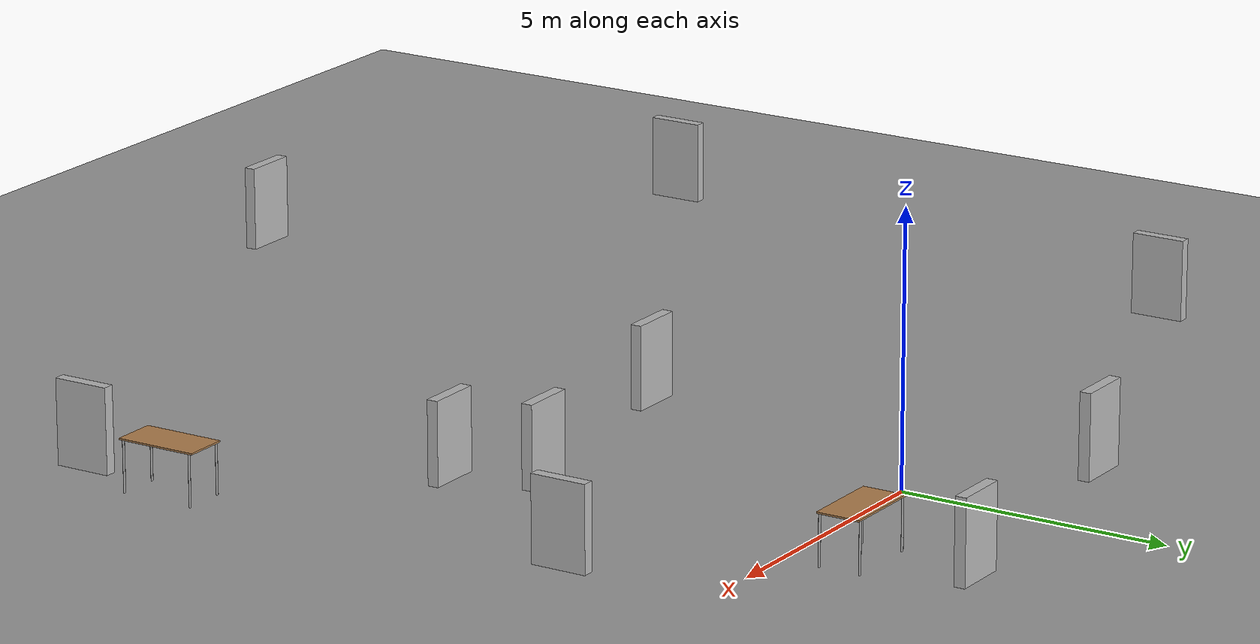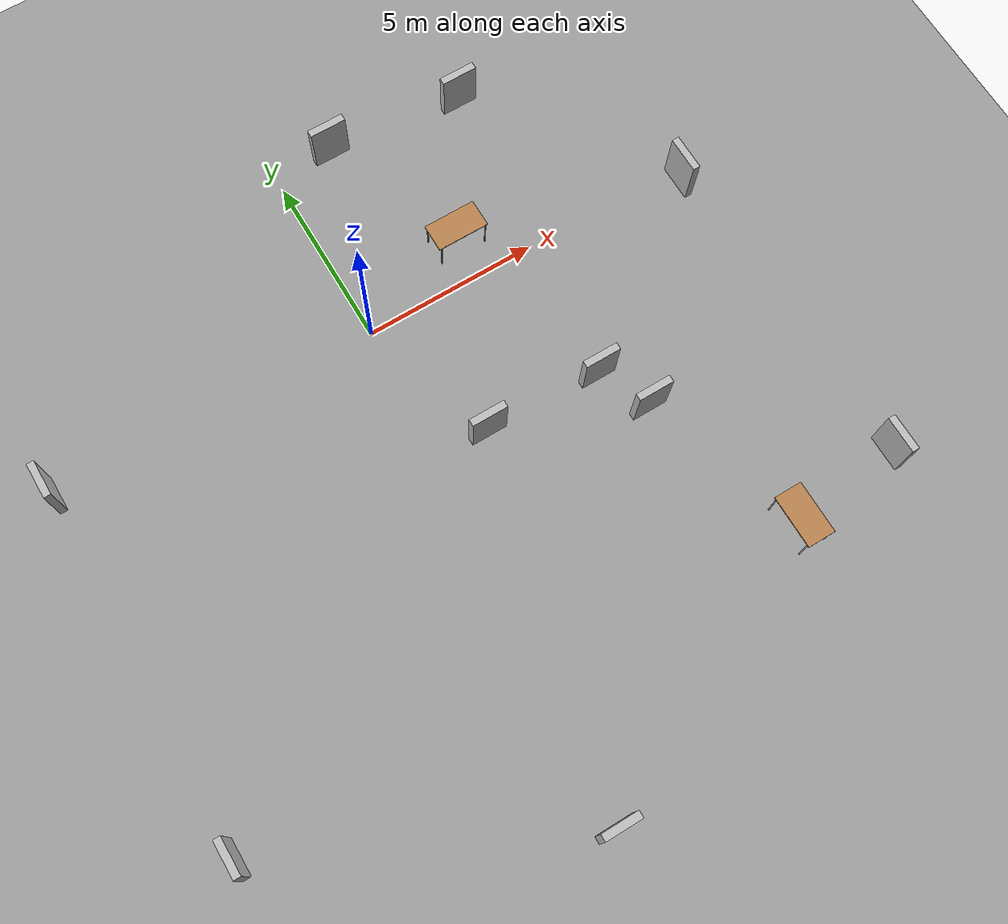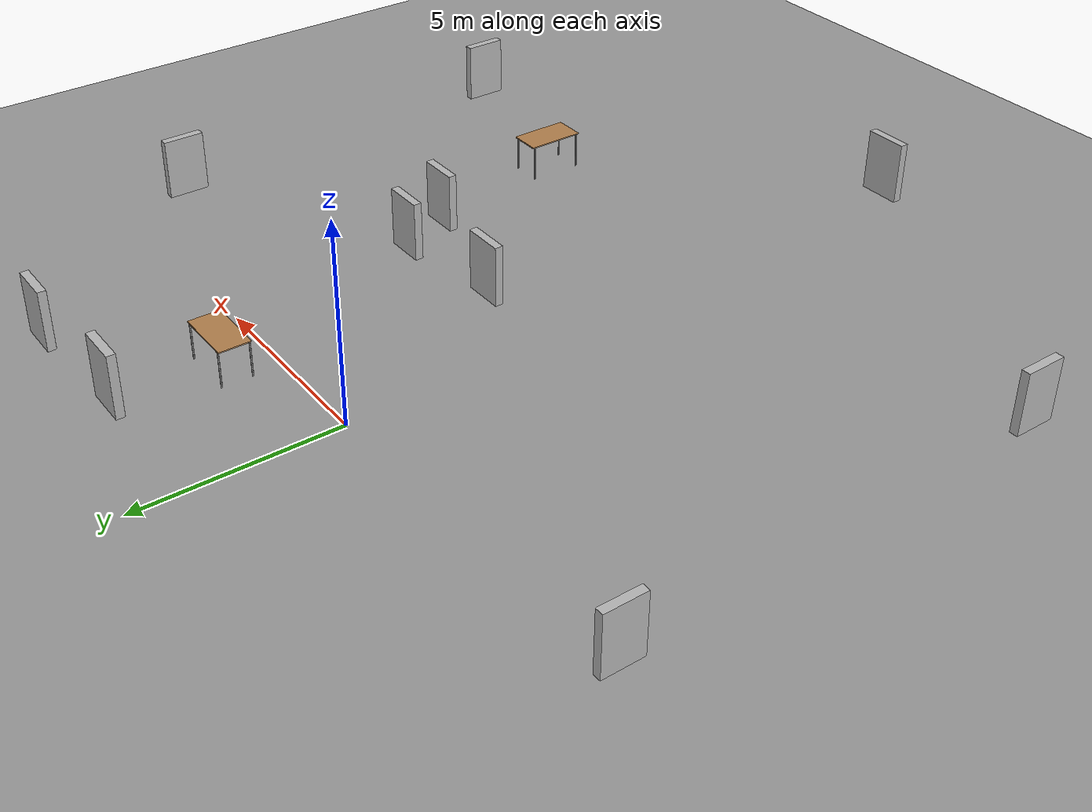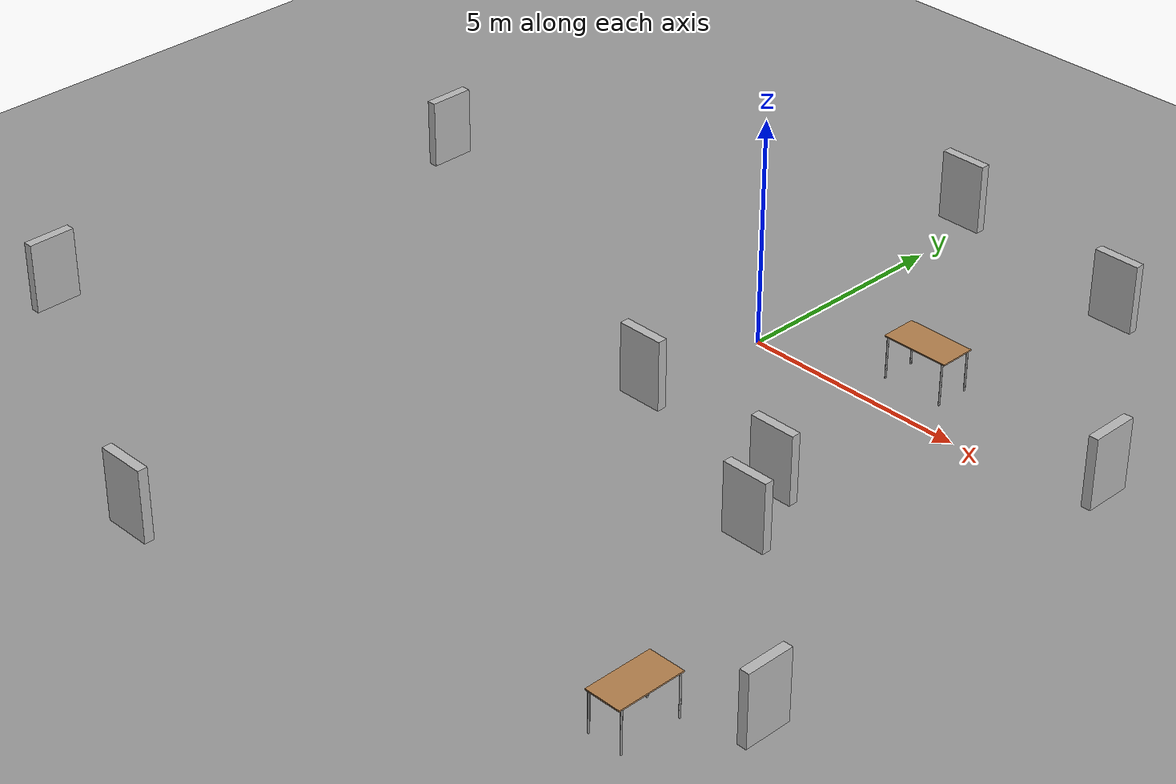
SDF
<sdf version="1.6">
 <world name="default">
  <light name="sun" type="directional">
   <pose>0 0 10 -0.1 -0.5 0</pose>
   <diffuse>0.8 0.8 0.8 1</diffuse>
   <specular>0.2 0.2 0.2 1</specular>
   <attenuation>
    <range>1000</range>
    <constant>0.9</constant>
    <linear>0.01</linear>
    <quadratic>0.001</quadratic>
   </attenuation>
   <direction>-0.5 0.1 -0.9</direction>
  </light>
  <plugin name="ros_interface_plugin" filename="librotors_gazebo_ros_interface_plugin.so"/>
  <spherical_coordinates>
   <surface_model>EARTH_WGS84</surface_model>
   <latitude_deg>47.3667</latitude_deg>
   <longitude_deg>8.55</longitude_deg>
   <elevation>500</elevation>
   <heading_deg>0</heading_deg>
  </spherical_coordinates>
  <physics name="default_physics" default="0" type="ode">
   <ode>
    <solver>
     <type>quick</type>
     <iters>1000</iters>
     <sor>1.3</sor>
     <use_dynamic_moi_rescaling>0</use_dynamic_moi_rescaling>
    </solver>
    <constraints>
     <cfm>0</cfm>
     <erp>0.2</erp>
     <contact_max_correcting_vel>100</contact_max_correcting_vel>
     <contact_surface_layer>0.001</contact_surface_layer>
    </constraints>
   </ode>
   <max_step_size>0.005</max_step_size>
   <real_time_factor>1</real_time_factor>
   <real_time_update_rate>200</real_time_update_rate>
  </physics>
  <scene><ambient>0.4 0.4 0.4 1</ambient><background>0.7 0.7 0.7 1</background><shadows>1</shadows></scene>
  <model name="gallery_plane_0">
   <static>1</static>
   <link name="link">
    <collision name="collision"><geometry><box><size>100 100 0.1</size></box></geometry></collision>
    <visual name="visual">
     <cast_shadows>0</cast_shadows>
     <geometry><box><size>100 100 0.1</size></box></geometry>
     <material>
      <script><uri>file://media/materials/scripts/gazebo.material</uri><name>Gazebo/Grey</name></script>
     </material>
    </visual>
   </link>
  </model>
  <model name="painting_wall_3">
   <static>1</static>
   <link name="link">
    <pose>0 0 1.4 0 -0 0</pose>
    <collision name="collision"><geometry><box><size>1 0.2 1.5</size></box></geometry></collision>
    <visual name="visual">
     <cast_shadows>0</cast_shadows>
     <geometry><box><size>1 0.2 1.5</size></box></geometry>
     <material>
      <script>
       <uri>model://painting_wall/materials/scripts</uri>
       <uri>model://painting_wall/materials/textures</uri>
       <name>vrc/painting_wall4</name>
      </script>
     </material>
    </visual>
   </link>
   <pose>1.02704 -4.32011 0.4612 0 -0 0</pose>
  </model>
  <model name="painting_wall_4">
   <static>1</static>
   <link name="link">
    <pose>0 0 1.4 0 -0 0</pose>
    <collision name="collision"><geometry><box><size>1 0.2 1.5</size></box></geometry></collision>
    <visual name="visual">
     <cast_shadows>0</cast_shadows>
     <geometry><box><size>1 0.2 1.5</size></box></geometry>
     <material>
      <script>
       <uri>model://painting_wall/materials/scripts</uri>
       <uri>model://painting_wall/materials/textures</uri>
       <name>vrc/painting_wall9</name>
      </script>
     </material>
    </visual>
   </link>
   <pose>4.36323 -4.32672 0 0 -0 0</pose>
  </model>
  <model name="painting_wall_6">
   <static>1</static>
   <link name="link">
    <pose>0 0 1.4 0 -0 0</pose>
    <collision name="collision"><geometry><box><size>1 0.2 1.5</size></box></geometry></collision>
    <visual name="visual">
     <cast_shadows>0</cast_shadows>
     <geometry><box><size>1 0.2 1.5</size></box></geometry>
     <material>
      <script>
       <uri>model://painting_wall/materials/scripts</uri>
       <uri>model://painting_wall/materials/textures</uri>
       <name>vrc/painting_wall8</name>
      </script>
     </material>
    </visual>
   </link>
   <pose>5.02991 -5.74442 0 0 -0 0</pose>
  </model>
  <model name="painting_wall_7">
   <static>1</static>
   <link name="link">
    <pose>0 0 1.4 0 -0 0</pose>
    <collision name="collision"><geometry><box><size>1 0.2 1.5</size></box></geometry></collision>
    <visual name="visual">
     <cast_shadows>0</cast_shadows>
     <geometry><box><size>1 0.2 1.5</size></box></geometry>
     <material>
      <script>
       <uri>model://painting_wall/materials/scripts</uri>
       <uri>model://painting_wall/materials/textures</uri>
       <name>vrc/painting_wall10</name>
      </script>
     </material>
    </visual>
   </link>
   <pose>-1.50913 -14.156 1.06355 0 -0 0</pose>
  </model>
  <model name="painting_wall_8">
   <static>1</static>
   <link name="link">
    <pose>0 0 1.4 0 -0 0</pose>
    <collision name="collision"><geometry><box><size>1 0.2 1.5</size></box></geometry></collision>
    <visual name="visual">
     <cast_shadows>0</cast_shadows>
     <geometry><box><size>1 0.2 1.5</size></box></geometry>
     <material>
      <script>
       <uri>model://painting_wall/materials/scripts</uri>
       <uri>model://painting_wall/materials/textures</uri>
       <name>vrc/painting_wall1</name>
      </script>
     </material>
    </visual>
   </link>
   <pose>-9.29715 -10.2672 0.58732 0 -0 1.57</pose>
  </model>
  <model name="painting_wall_8_clone">
   <static>1</static>
   <link name="link">
    <pose>0 0 1.4 0 -0 0</pose>
    <collision name="collision"><geometry><box><size>1 0.2 1.5</size></box></geometry></collision>
    <visual name="visual">
     <cast_shadows>0</cast_shadows>
     <geometry><box><size>1 0.2 1.5</size></box></geometry>
     <material>
      <script>
       <uri>model://painting_wall/materials/scripts</uri>
       <uri>model://painting_wall/materials/textures</uri>
       <name>vrc/painting_wall2</name>
      </script>
     </material>
    </visual>
   </link>
   <pose>-9.19927 -0.004712 0 0 -0 1.57</pose>
  </model>
  <model name="painting_wall_8_clone_0">
   <static>1</static>
   <link name="link">
    <pose>0 0 1.4 0 -0 0</pose>
    <collision name="collision"><geometry><box><size>1 0.2 1.5</size></box></geometry></collision>
    <visual name="visual">
     <cast_shadows>0</cast_shadows>
     <geometry><box><size>1 0.2 1.5</size></box></geometry>
     <material>
      <script>
       <uri>model://painting_wall/materials/scripts</uri>
       <uri>model://painting_wall/materials/textures</uri>
       <name>vrc/painting_wall3</name>
      </script>
     </material>
    </visual>
   </link>
   <pose>9.08957 -0.886666 0.60954 0 -0 1.57</pose>
  </model>
  <model name="painting_wall_8_clone_1">
   <static>1</static>
   <link name="link">
    <pose>0 0 1.4 0 -0 0</pose>
    <collision name="collision"><geometry><box><size>1 0.2 1.5</size></box></geometry></collision>
    <visual name="visual">
     <cast_shadows>0</cast_shadows>
     <geometry><box><size>1 0.2 1.5</size></box></geometry>
     <material>
      <script>
       <uri>model://painting_wall/materials/scripts</uri>
       <uri>model://painting_wall/materials/textures</uri>
       <name>vrc/painting_wall5</name>
      </script>
     </material>
    </visual>
   </link>
   <pose>9.3531 -9.96985 0.650912 0 -0 1.57</pose>
  </model>
  <model name="table">
   <static>1</static>
   <link name="link">
    <collision name="surface">
     <pose>0 0 1 0 -0 0</pose>
     <geometry><box><size>1.5 0.8 0.03</size></box></geometry>
     <surface><friction><ode><mu>0.6</mu><mu2>0.6</mu2></ode></friction></surface>
    </collision>
    <visual name="visual1">
     <pose>0 0 1 0 -0 0</pose>
     <geometry><box><size>1.5 0.8 0.03</size></box></geometry>
     <material>
      <script><uri>file://media/materials/scripts/gazebo.material</uri><name>Gazebo/Wood</name></script>
     </material>
    </visual>
    <collision name="front_left_leg">
     <pose>0.68 0.38 0.5 0 -0 0</pose>
     <geometry><cylinder><radius>0.02</radius><length>1</length></cylinder></geometry>
    </collision>
    <visual name="front_left_leg">
     <pose>0.68 0.38 0.5 0 -0 0</pose>
     <geometry><cylinder><radius>0.02</radius><length>1</length></cylinder></geometry>
     <material>
      <script><uri>file://media/materials/scripts/gazebo.material</uri><name>Gazebo/Grey</name></script>
     </material>
    </visual>
    <collision name="front_right_leg">
     <pose>0.68 -0.38 0.5 0 -0 0</pose>
     <geometry><cylinder><radius>0.02</radius><length>1</length></cylinder></geometry>
    </collision>
    <visual name="front_right_leg">
     <pose>0.68 -0.38 0.5 0 -0 0</pose>
     <geometry><cylinder><radius>0.02</radius><length>1</length></cylinder></geometry>
     <material>
      <script><uri>file://media/materials/scripts/gazebo.material</uri><name>Gazebo/Grey</name></script>
     </material>
    </visual>
    <collision name="back_right_leg">
     <pose>-0.68 -0.38 0.5 0 -0 0</pose>
     <geometry><cylinder><radius>0.02</radius><length>1</length></cylinder></geometry>
    </collision>
    <visual name="back_right_leg">
     <pose>-0.68 -0.38 0.5 0 -0 0</pose>
     <geometry><cylinder><radius>0.02</radius><length>1</length></cylinder></geometry>
     <material>
      <script><uri>file://media/materials/scripts/gazebo.material</uri><name>Gazebo/Grey</name></script>
     </material>
    </visual>
    <collision name="back_left_leg">
     <pose>-0.68 0.38 0.5 0 -0 0</pose>
     <geometry><cylinder><radius>0.02</radius><length>1</length></cylinder></geometry>
    </collision>
    <visual name="back_left_leg">
     <pose>-0.68 0.38 0.5 0 -0 0</pose>
     <geometry><cylinder><radius>0.02</radius><length>1</length></cylinder></geometry>
     <material>
      <script><uri>file://media/materials/scripts/gazebo.material</uri><name>Gazebo/Grey</name></script>
     </material>
    </visual>
   </link>
   <pose>3.35011 1.16289 0 0 -0 0</pose>
  </model>
  <model name="table_clone">
   <static>1</static>
   <link name="link">
    <collision name="surface">
     <pose>0 0 1 0 -0 0</pose>
     <geometry><box><size>1.5 0.8 0.03</size></box></geometry>
     <surface><friction><ode><mu>0.6</mu><mu2>0.6</mu2></ode></friction></surface>
    </collision>
    <visual name="visual1">
     <pose>0 0 1 0 -0 0</pose>
     <geometry><box><size>1.5 0.8 0.03</size></box></geometry>
     <material>
      <script><uri>file://media/materials/scripts/gazebo.material</uri><name>Gazebo/Wood</name></script>
     </material>
    </visual>
    <collision name="front_left_leg">
     <pose>0.68 0.38 0.5 0 -0 0</pose>
     <geometry><cylinder><radius>0.02</radius><length>1</length></cylinder></geometry>
    </collision>
    <visual name="front_left_leg">
     <pose>0.68 0.38 0.5 0 -0 0</pose>
     <geometry><cylinder><radius>0.02</radius><length>1</length></cylinder></geometry>
     <material>
      <script><uri>file://media/materials/scripts/gazebo.material</uri><name>Gazebo/Grey</name></script>
     </material>
    </visual>
    <collision name="front_right_leg">
     <pose>0.68 -0.38 0.5 0 -0 0</pose>
     <geometry><cylinder><radius>0.02</radius><length>1</length></cylinder></geometry>
    </collision>
    <visual name="front_right_leg">
     <pose>0.68 -0.38 0.5 0 -0 0</pose>
     <geometry><cylinder><radius>0.02</radius><length>1</length></cylinder></geometry>
     <material>
      <script><uri>file://media/materials/scripts/gazebo.material</uri><name>Gazebo/Grey</name></script>
     </material>
    </visual>
    <collision name="back_right_leg">
     <pose>-0.68 -0.38 0.5 0 -0 0</pose>
     <geometry><cylinder><radius>0.02</radius><length>1</length></cylinder></geometry>
    </collision>
    <visual name="back_right_leg">
     <pose>-0.68 -0.38 0.5 0 -0 0</pose>
     <geometry><cylinder><radius>0.02</radius><length>1</length></cylinder></geometry>
     <material>
      <script><uri>file://media/materials/scripts/gazebo.material</uri><name>Gazebo/Grey</name></script>
     </material>
    </visual>
    <collision name="back_left_leg">
     <pose>-0.68 0.38 0.5 0 -0 0</pose>
     <geometry><cylinder><radius>0.02</radius><length>1</length></cylinder></geometry>
    </collision>
    <visual name="back_left_leg">
     <pose>-0.68 0.38 0.5 0 -0 0</pose>
     <geometry><cylinder><radius>0.02</radius><length>1</length></cylinder></geometry>
     <material>
      <script><uri>file://media/materials/scripts/gazebo.material</uri><name>Gazebo/Grey</name></script>
     </material>
    </visual>
   </link>
   <pose>6.75101 -10.2282 0 0 -0 1.57</pose>
  </model>
  <model name="painting_wall_6_clone">
   <static>1</static>
   <link name="link">
    <pose>0 0 1.4 0 -0 0</pose>
    <collision name="collision"><geometry><box><size>1 0.2 1.5</size></box></geometry></collision>
    <visual name="visual">
     <cast_shadows>0</cast_shadows>
     <geometry><box><size>1 0.2 1.5</size></box></geometry>
     <material>
      <script>
       <uri>model://painting_wall/materials/scripts</uri>
       <uri>model://painting_wall/materials/textures</uri>
       <name>vrc/painting_wall6</name>
      </script>
     </material>
    </visual>
   </link>
   <pose>1.4065 4.44451 0.92348 0 -0 0</pose>
  </model>
  <model name="painting_wall_4_clone">
   <static>1</static>
   <link name="link">
    <pose>0 0 1.4 0 -0 0</pose>
    <collision name="collision"><geometry><box><size>1 0.2 1.5</size></box></geometry></collision>
    <visual name="visual">
     <cast_shadows>0</cast_shadows>
     <geometry><box><size>1 0.2 1.5</size></box></geometry>
     <material>
      <script>
       <uri>model://painting_wall/materials/scripts</uri>
       <uri>model://painting_wall/materials/textures</uri>
       <name>vrc/painting_wall7</name>
      </script>
     </material>
    </visual>
   </link>
   <pose>5.32785 4.38478 0.302863 0 -0 0</pose>
  </model>
  <gravity>0 0 -9.8</gravity>
  <magnetic_field>6e-06 2.3e-05 -4.2e-05</magnetic_field>
  <atmosphere type="adiabatic"/>
  <audio><device>default</device></audio>
 </world>
</sdf>
